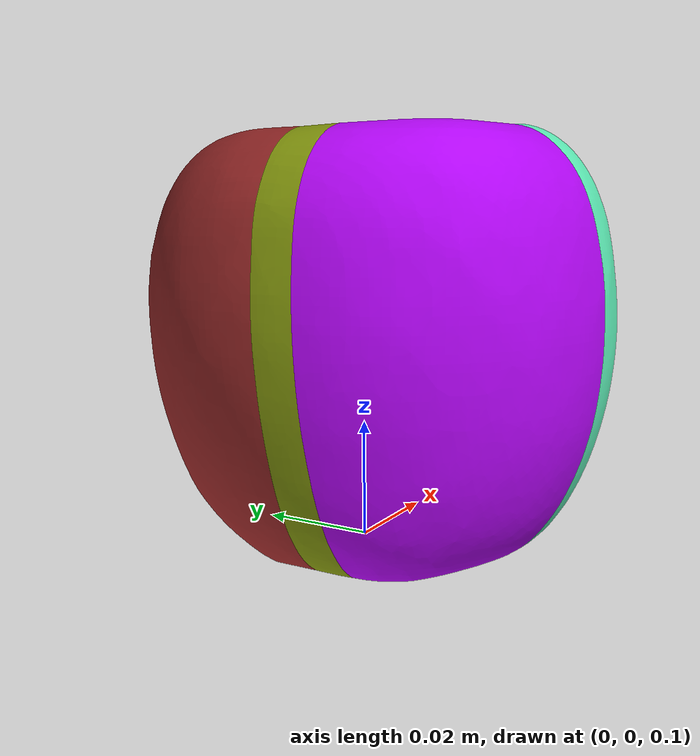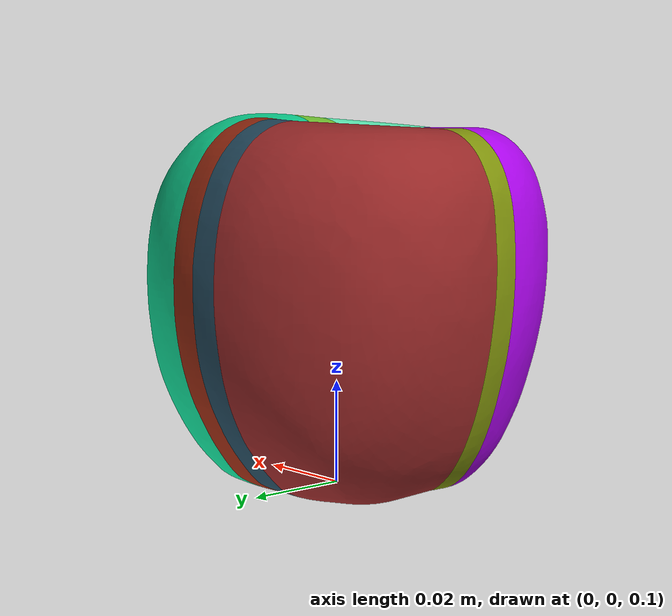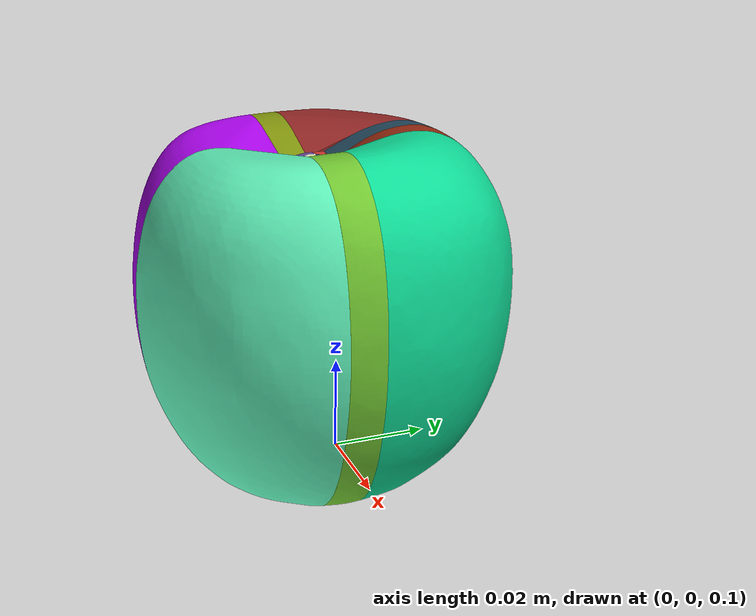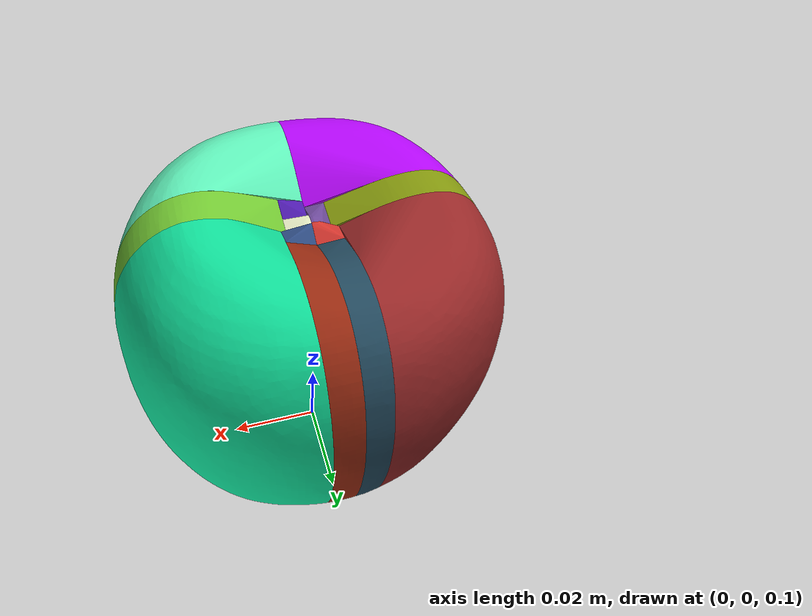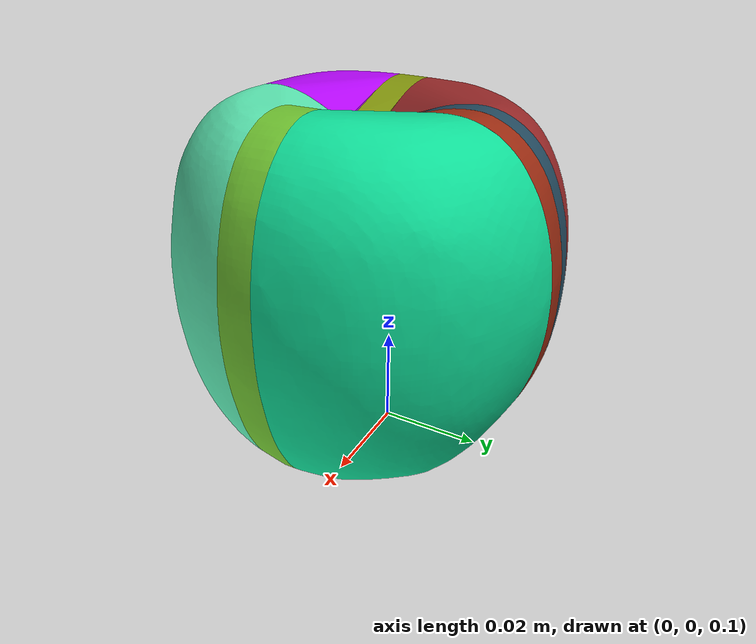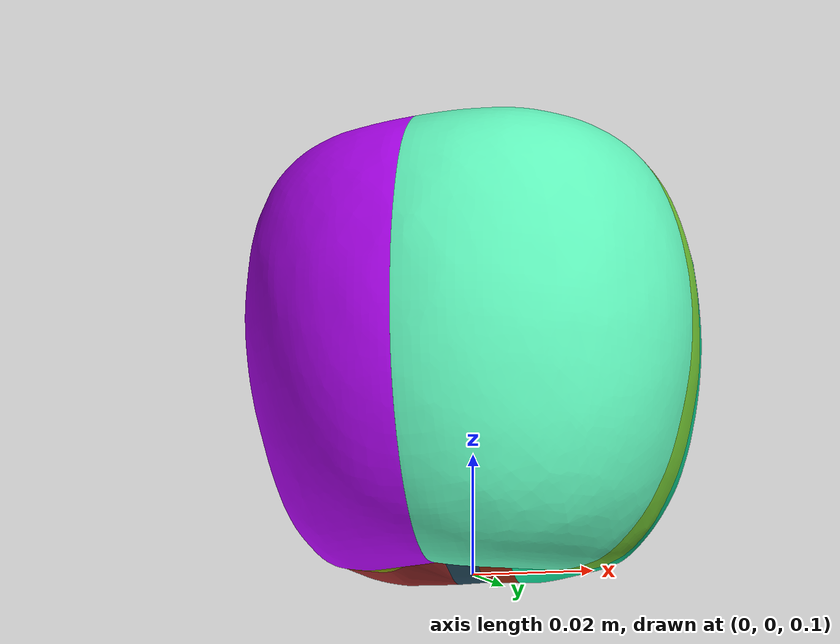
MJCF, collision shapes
<mujoco model="013_apple">
  <compiler assetdir="meshes" texturedir="materials"/>

  <asset>
    <texture type="2d" name="texture" file="013_apple_texture_map.png"/>
    <material name="texture" texture="texture"/>

    <mesh file="013_apple_textured.obj"/>
    <mesh file="013_apple_coacd_part_000.obj"/>
    <mesh file="013_apple_coacd_part_001.obj"/>
    <mesh file="013_apple_coacd_part_002.obj"/>
    <mesh file="013_apple_coacd_part_003.obj"/>
    <mesh file="013_apple_coacd_part_004.obj"/>
    <mesh file="013_apple_coacd_part_005.obj"/>
    <mesh file="013_apple_coacd_part_006.obj"/>
    <mesh file="013_apple_coacd_part_007.obj"/>
    <mesh file="013_apple_coacd_part_008.obj"/>
    <mesh file="013_apple_coacd_part_009.obj"/>
    <mesh file="013_apple_coacd_part_010.obj"/>
    <mesh file="013_apple_coacd_part_011.obj"/>
    <mesh file="013_apple_coacd_part_012.obj"/>
  </asset>

  <default>
    <default class="013_apple">
      <default class="visual_013_apple">
        <geom type="mesh" group="2" density="200" contype="0" conaffinity="0" material="texture"/>
      </default>
      <default class="collision_013_apple">
        <geom type="mesh" group="3" mass="0" density="0" solref=".004 1" friction="1.0 0.01 0.01" condim="6"/>
      </default>
    </default>
  </default>

  <worldbody>
    <body childclass="013_apple" pos="0 0 0.1">
      <freejoint/>
      <geom class="visual_013_apple" mesh="013_apple_textured"/>
      <geom class="collision_013_apple" mesh="013_apple_coacd_part_000" rgba="0.375 0.95 0.73 1"/>
      <geom class="collision_013_apple" mesh="013_apple_coacd_part_001" rgba="0.599 0.16 0.16 1"/>
      <geom class="collision_013_apple" mesh="013_apple_coacd_part_002" rgba="0.058 0.87 0.60 1"/>
      <geom class="collision_013_apple" mesh="013_apple_coacd_part_003" rgba="0.708 0.02 0.97 1"/>
      <geom class="collision_013_apple" mesh="013_apple_coacd_part_004" rgba="0.832 0.21 0.18 1"/>
      <geom class="collision_013_apple" mesh="013_apple_coacd_part_005" rgba="0.183 0.30 0.52 1"/>
      <geom class="collision_013_apple" mesh="013_apple_coacd_part_006" rgba="0.432 0.29 0.61 1"/>
      <geom class="collision_013_apple" mesh="013_apple_coacd_part_007" rgba="0.139 0.29 0.37 1"/>
      <geom class="collision_013_apple" mesh="013_apple_coacd_part_008" rgba="0.456 0.79 0.20 1"/>
      <geom class="collision_013_apple" mesh="013_apple_coacd_part_009" rgba="0.514 0.59 0.05 1"/>
      <geom class="collision_013_apple" mesh="013_apple_coacd_part_010" rgba="0.608 0.17 0.07 1"/>
      <geom class="collision_013_apple" mesh="013_apple_coacd_part_011" rgba="0.949 0.97 0.81 1"/>
      <geom class="collision_013_apple" mesh="013_apple_coacd_part_012" rgba="0.305 0.10 0.68 1"/>
    </body>
  </worldbody>
</mujoco>
